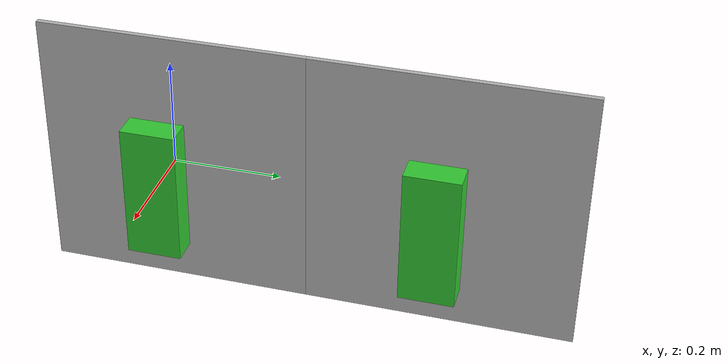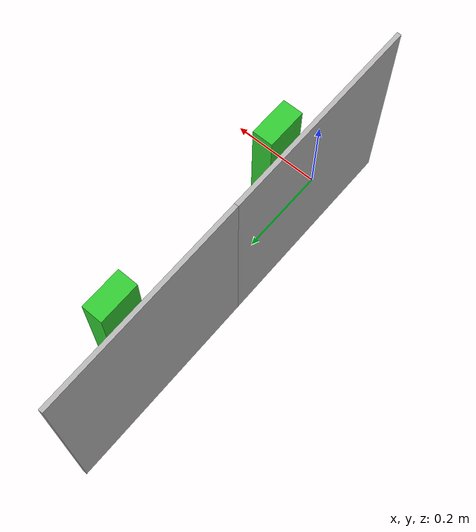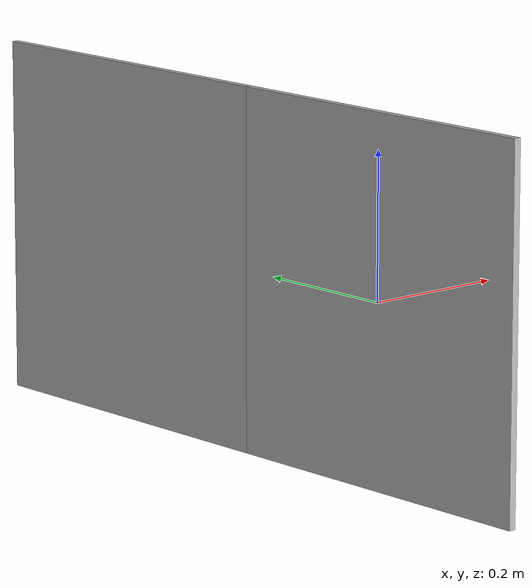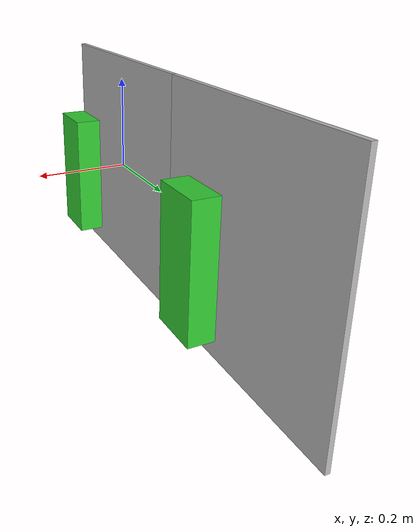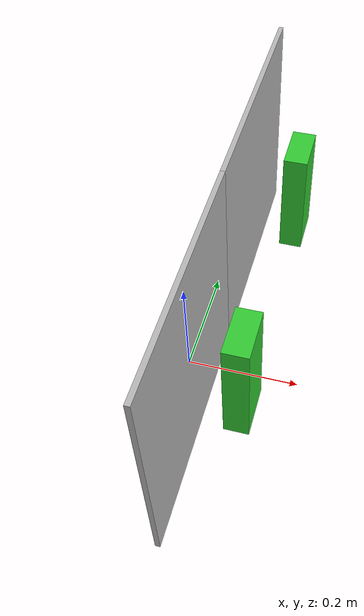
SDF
<?xml version="1.0" ?>
<sdf version="1.6">
  <world name="default">
    <plugin
      filename="gz-sim-physics-system"
      name="gz::sim::systems::Physics">
    </plugin>
    <plugin
      filename="gz-sim-scene-broadcaster-system"
      name="gz::sim::systems::SceneBroadcaster">
    </plugin>

    <light type="directional" name="sun">
      <cast_shadows>true</cast_shadows>
      <pose>0 0 10 0 0 0</pose>
      <diffuse>1 1 1 1</diffuse>
      <specular>0.5 0.5 0.5 1</specular>
      <attenuation>
        <range>1000</range>
        <constant>0.9</constant>
        <linear>0.01</linear>
        <quadratic>0.001</quadratic>
      </attenuation>
      <direction>-0.5 0.1 -0.9</direction>
    </light>
    <model name="joint_controller_demo">
      <pose>0 0 0 0 1.57 0</pose>
      <link name="base_link">
        <pose>0.0 0.0 0.0 0 0 0</pose>
        <inertial>
          <inertia>
            <ixx>2.501</ixx>
            <ixy>0</ixy>
            <ixz>0</ixz>
            <iyy>2.501</iyy>
            <iyz>0</iyz>
            <izz>5</izz>
          </inertia>
          <mass>120.0</mass>
        </inertial>
        <visual name="base_visual">
          <pose>0.0 0.0 0.0 0 0 0</pose>
          <geometry>
            <box>
              <size>0.5 0.5 0.01</size>
            </box>
          </geometry>
        </visual>
        <collision name="base_collision">
          <pose>0.0 0.0 0.0 0 0 0</pose>
          <geometry>
            <box>
              <size>0.5 0.5 0.01</size>
            </box>
          </geometry>
        </collision>
      </link>
      <link name="rotor">
        <pose>0.0 0.0 0.1 0 0 0</pose>
        <inertial>
          <inertia>
            <ixx>0.032</ixx>
            <ixy>0</ixy>
            <ixz>0</ixz>
            <iyy>0.032</iyy>
            <iyz>0</iyz>
            <izz>0.00012</izz>
          </inertia>
          <mass>0.6</mass>
        </inertial>
        <visual name="visual">
          <geometry>
            <box>
              <size>0.25 0.1 0.05</size>
            </box>
          </geometry>
          <material>
            <ambient>0.2 0.8 0.2 1</ambient>
          </material>
        </visual>
        <collision name="collision">
          <geometry>
            <box>
              <size>0.25 0.1 0.05</size>
            </box>
          </geometry>
        </collision>
      </link>

      <joint name="world_fixed" type="fixed">
        <parent>world</parent>
        <child>base_link</child>
      </joint>

      <joint name="jx" type="revolute">
        <pose>0 0 -0.5 0 0 0</pose>
        <parent>base_link</parent>
        <child>rotor</child>
        <axis>
          <xyz>1 0 0</xyz>
        </axis>
      </joint>

      <joint name="jy" type="revolute">
        <pose>0 0 -0.5 0 0 0</pose>
        <parent>base_link</parent>
        <child>rotor</child>
        <axis>
          <xyz>0 1 0</xyz>
        </axis>
      </joint>

      <joint name="jz" type="revolute">
        <pose>0 0 -0.5 0 0 0</pose>
        <parent>base_link</parent>
        <child>rotor</child>
        <axis>
          <xyz>0 0 1</xyz>
        </axis>
      </joint>
      <!-- Velocity mode -->
      <plugin
        filename="gz-sim-joint-controller-system"
        name="gz::sim::systems::JointController">
        <joint_name>jx</joint_name>
        <initial_velocity>5.0</initial_velocity>
      </plugin>
      <plugin
        filename="gz-sim-joint-controller-system"
        name="gz::sim::systems::JointController">
        <joint_name>jy</joint_name>
        <initial_velocity>5.0</initial_velocity>
      </plugin>
      <plugin
        filename="gz-sim-joint-controller-system"
        name="gz::sim::systems::JointController">
        <joint_name>jz</joint_name>
        <initial_velocity>5.0</initial_velocity>
      </plugin>
    </model>

    <model name="joint_controller_demo_2">
      <pose>0 0.5 0 0 1.57 0</pose>
      <link name="base_link">
        <pose>0.0 0.0 0.0 0 0 0</pose>
        <inertial>
          <inertia>
            <ixx>2.501</ixx>
            <ixy>0</ixy>
            <ixz>0</ixz>
            <iyy>2.501</iyy>
            <iyz>0</iyz>
            <izz>5</izz>
          </inertia>
          <mass>120.0</mass>
        </inertial>
        <visual name="base_visual">
          <pose>0.0 0.0 0.0 0 0 0</pose>
          <geometry>
            <box>
              <size>0.5 0.5 0.01</size>
            </box>
          </geometry>
        </visual>
        <collision name="base_collision">
          <pose>0.0 0.0 0.0 0 0 0</pose>
          <geometry>
            <box>
              <size>0.5 0.5 0.01</size>
            </box>
          </geometry>
        </collision>
      </link>
      <link name="rotor2">
        <pose>0.0 0.0 0.1 0 0 0</pose>
        <inertial>
          <inertia>
            <ixx>0.032</ixx>
            <ixy>0</ixy>
            <ixz>0</ixz>
            <iyy>0.032</iyy>
            <iyz>0</iyz>
            <izz>0.00012</izz>
          </inertia>
          <mass>0.6</mass>
        </inertial>
        <visual name="visual">
          <geometry>
            <box>
              <size>0.25 0.1 0.05</size>
            </box>
          </geometry>
          <material>
            <ambient>0.2 0.8 0.2 1</ambient>
          </material>
        </visual>
        <collision name="collision">
          <geometry>
            <box>
              <size>0.25 0.1 0.05</size>
            </box>
          </geometry>
        </collision>
      </link>

      <joint name="world_fixed" type="fixed">
        <parent>world</parent>
        <child>base_link</child>
      </joint>

      <joint name="jx" type="revolute">
        <pose>0 0 -0.5 0 0 0</pose>
        <parent>base_link</parent>
        <child>rotor2</child>
        <axis>
          <xyz>1 0 0</xyz>
        </axis>
      </joint>

      <joint name="jy" type="revolute">
        <pose>0 0 -0.5 0 0 0</pose>
        <parent>base_link</parent>
        <child>rotor2</child>
        <axis>
          <xyz>0 1 0</xyz>
        </axis>
      </joint>

      <joint name="jz" type="revolute">
        <pose>0 0 -0.5 0 0 0</pose>
        <parent>base_link</parent>
        <child>rotor2</child>
        <axis>
          <xyz>0 0 1</xyz>
        </axis>
      </joint>

      <!-- Force mode -->
      <plugin
        filename="gz-sim-joint-controller-system"
        name="gz::sim::systems::JointController">
        <joint_name>jx</joint_name>
        <use_force_commands>true</use_force_commands>
        <p_gain>0.2</p_gain>
        <i_gain>0.01</i_gain>
      </plugin>

      <plugin
        filename="gz-sim-joint-controller-system"
        name="gz::sim::systems::JointController">
        <joint_name>jy</joint_name>
        <use_force_commands>true</use_force_commands>
        <p_gain>0.2</p_gain>
        <i_gain>0.01</i_gain>
      </plugin>

      <plugin
        filename="gz-sim-joint-controller-system"
        name="gz::sim::systems::JointController">
        <joint_name>jz</joint_name>
        <use_force_commands>true</use_force_commands>
        <p_gain>0.2</p_gain>
        <i_gain>0.01</i_gain>
      </plugin>
    </model>
  </world>
</sdf>
